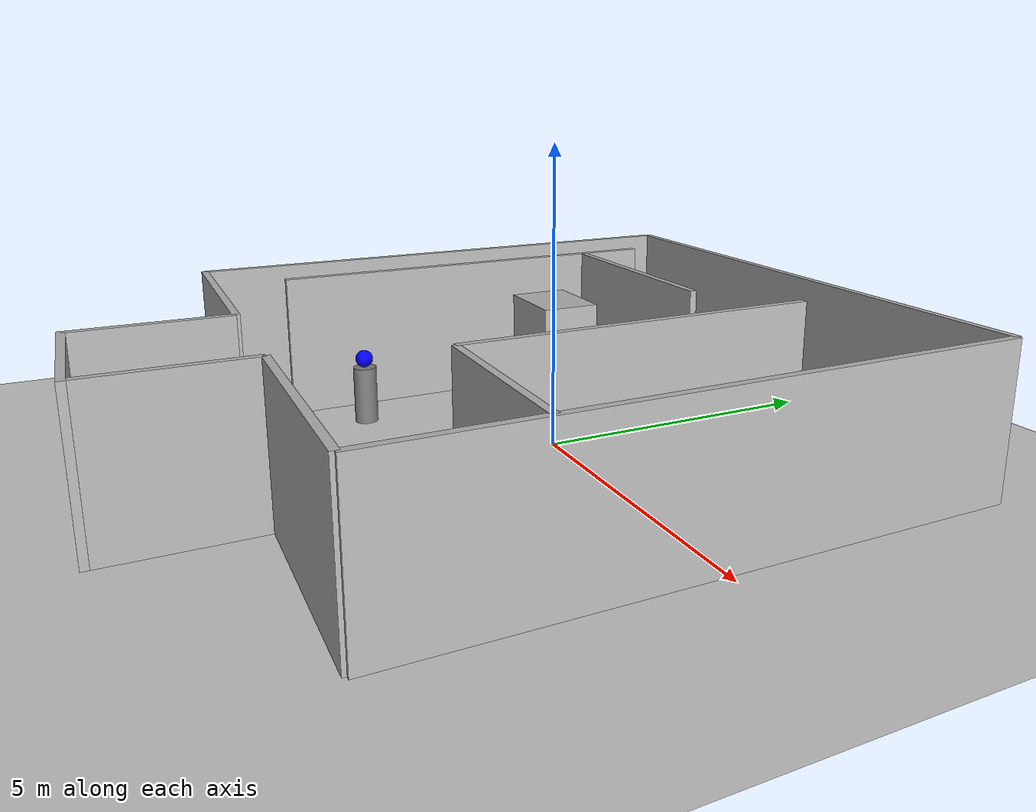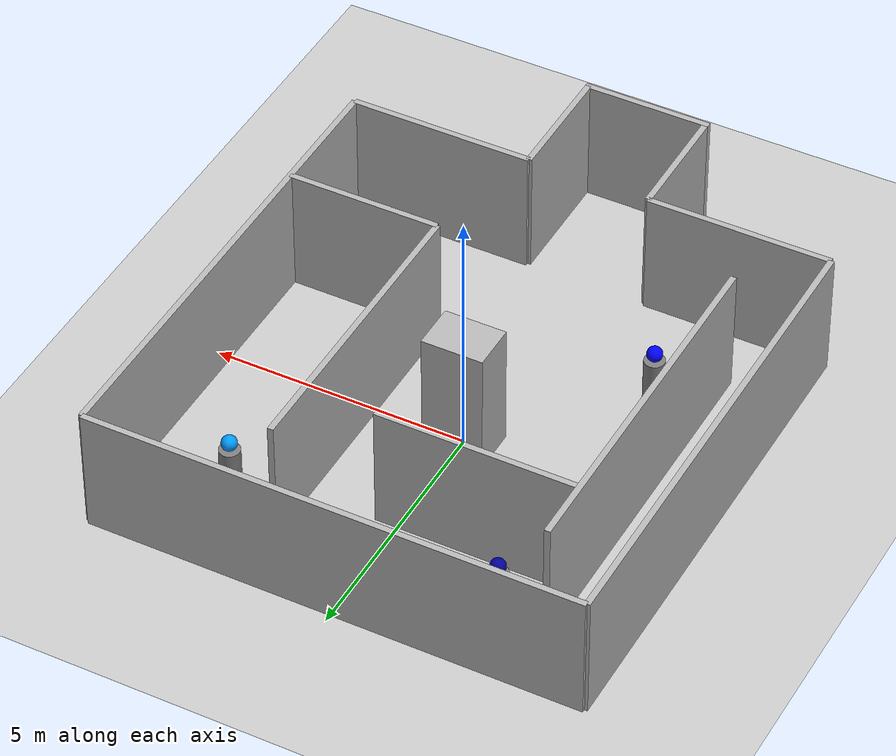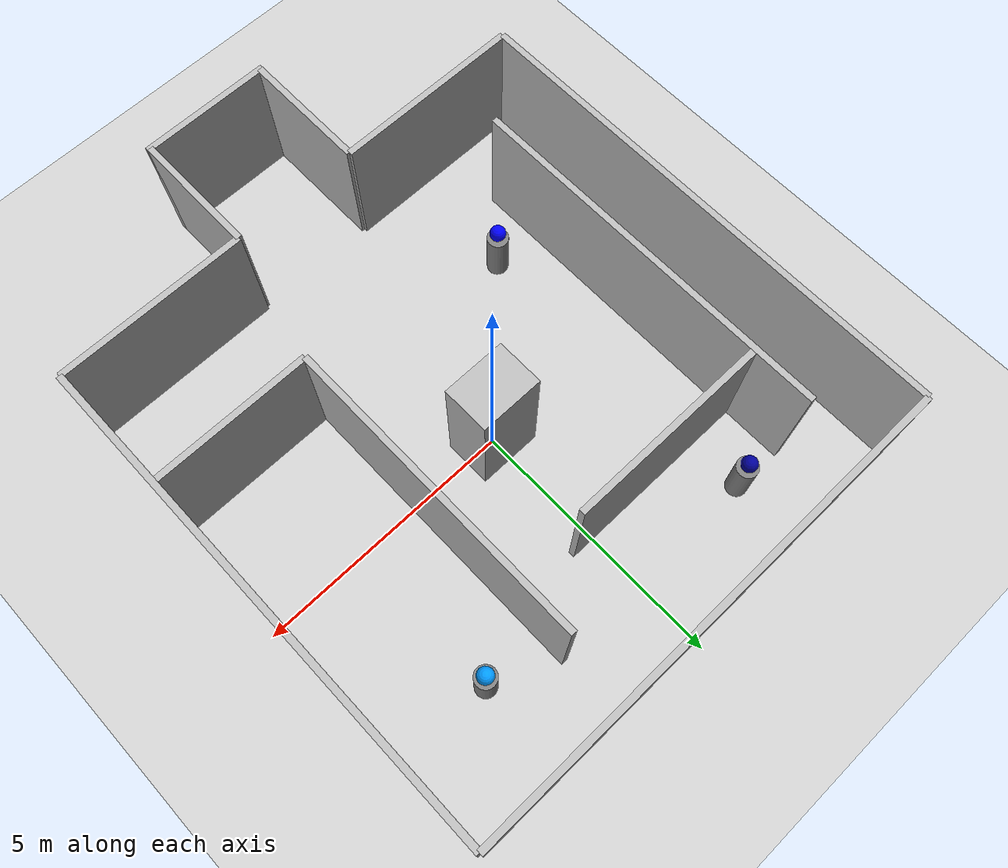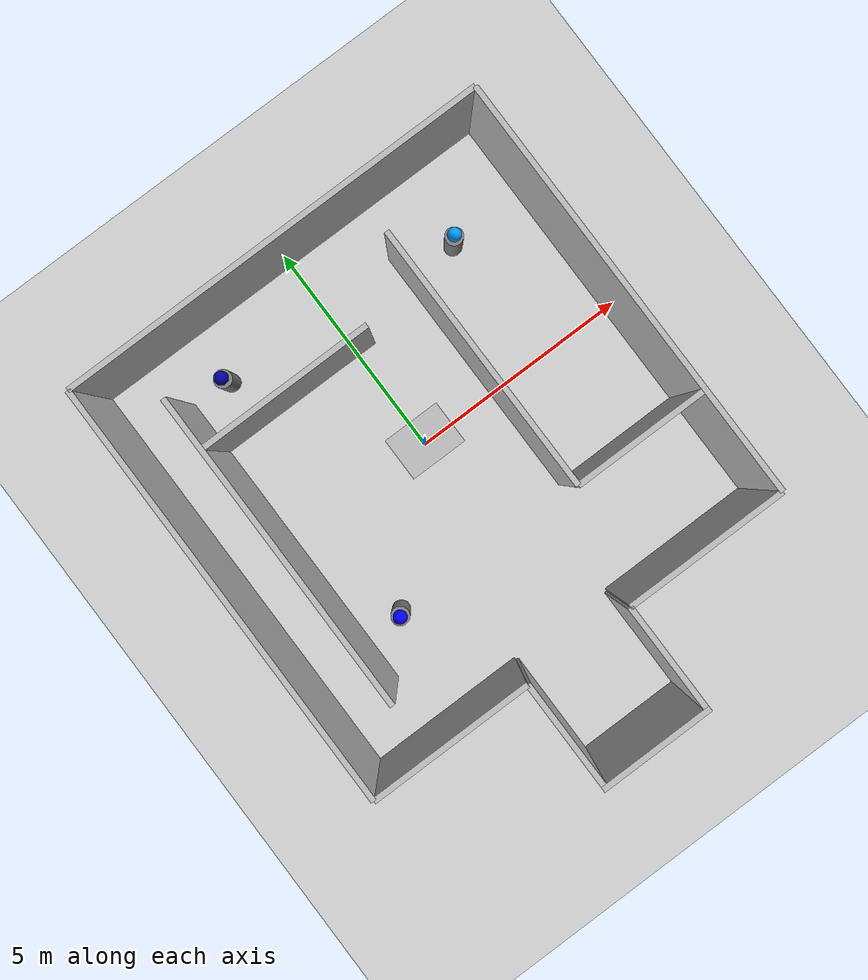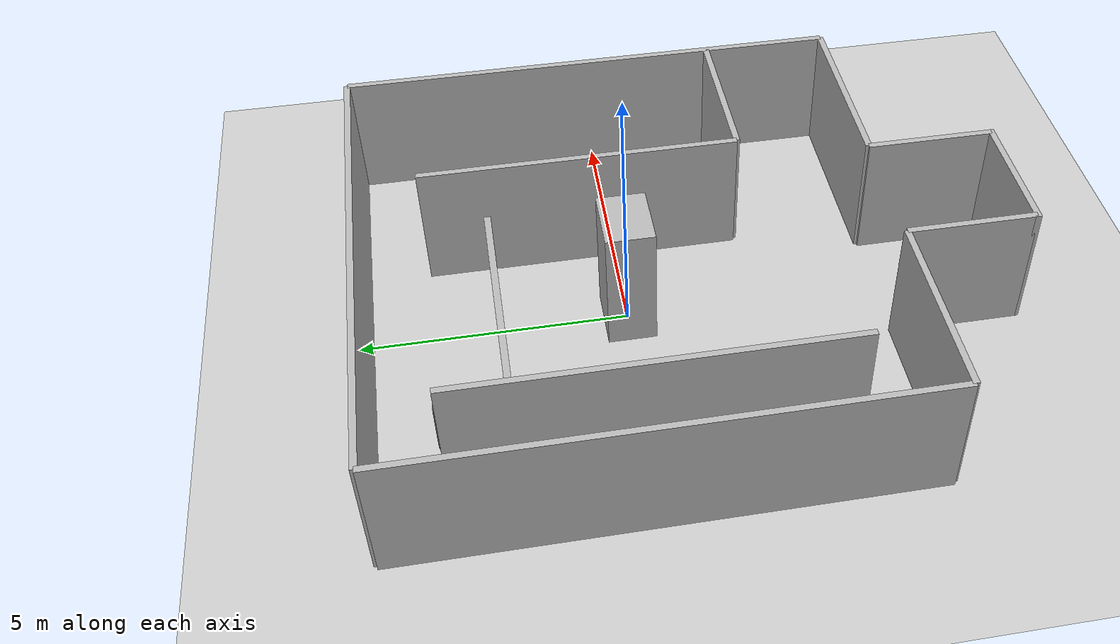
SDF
<?xml version="1.0" ?>
<sdf version="1.8">
  <world name="warehouse_scaled">
    <physics name="1ms" type="ignored">
      <max_step_size>0.001</max_step_size>
      <real_time_factor>1.0</real_time_factor>
    </physics>
    <light name="sun" type="directional">
      <cast_shadows>true</cast_shadows>
      <pose>0 0 10 0 0 0</pose>
      <diffuse>0.8 0.8 0.8 1</diffuse>
      <specular>0.2 0.2 0.2 1</specular>
      <attenuation>
        <range>1000</range>
        <constant>0.9</constant>
        <linear>0.01</linear>
        <quadratic>0.001</quadratic>
      </attenuation>
      <direction>-0.5 0.1 -0.9</direction>
    </light>
    <model name="ground_plane">
      <static>true</static>
      <link name="link">
        <collision name="collision">
          <geometry><plane><normal>0 0 1</normal><size>60.0 60.0</size></plane></geometry>
        </collision>
        <visual name="visual">
          <geometry><plane><normal>0 0 1</normal><size>60.0 60.0</size></plane></geometry>
          <material><ambient>0.8 0.8 0.8 1</ambient><diffuse>0.8 0.8 0.8 1</diffuse></material>
        </visual>
      </link>
    </model>

    <model name="warehouse_structure">
      <static>true</static>
      <link name="north_wall">
        <pose>0 4.8 1.25 0 0 0</pose>
        <collision name="col"><geometry><box><size>9.6 0.12 2.5</size></box></geometry></collision>
        <visual name="vis"><geometry><box><size>9.6 0.12 2.5</size></box></geometry></visual>
      </link>
      <link name="west_wall">
        <pose>-4.8 0 1.25 0 0 1.57079632679</pose>
        <collision name="col"><geometry><box><size>9.6 0.12 2.5</size></box></geometry></collision>
        <visual name="vis"><geometry><box><size>9.6 0.12 2.5</size></box></geometry></visual>
      </link>
      <link name="east_wall">
        <pose>4.8 0 1.25 0 0 1.57079632679</pose>
        <collision name="col"><geometry><box><size>9.6 0.12 2.5</size></box></geometry></collision>
        <visual name="vis"><geometry><box><size>9.6 0.12 2.5</size></box></geometry></visual>
      </link>
      <link name="south_wall_left">
        <pose>-3.0 -4.8 1.25 0 0 0</pose>
        <collision name="col"><geometry><box><size>3.5999999999999996 0.12 2.5</size></box></geometry></collision>
        <visual name="vis"><geometry><box><size>3.5999999999999996 0.12 2.5</size></box></geometry></visual>
      </link>
      <link name="south_wall_right">
        <pose>3.0 -4.8 1.25 0 0 0</pose>
        <collision name="col"><geometry><box><size>3.5999999999999996 0.12 2.5</size></box></geometry></collision>
        <visual name="vis"><geometry><box><size>3.5999999999999996 0.12 2.5</size></box></geometry></visual>
      </link>
      <link name="dock_left_wall">
        <pose>-1.2 -6.0 1.25 0 0 1.57079632679</pose>
        <collision name="col"><geometry><box><size>2.4 0.12 2.5</size></box></geometry></collision>
        <visual name="vis"><geometry><box><size>2.4 0.12 2.5</size></box></geometry></visual>
      </link>
      <link name="dock_right_wall">
        <pose>1.2 -6.0 1.25 0 0 1.57079632679</pose>
        <collision name="col"><geometry><box><size>2.4 0.12 2.5</size></box></geometry></collision>
        <visual name="vis"><geometry><box><size>2.4 0.12 2.5</size></box></geometry></visual>
      </link>
      <link name="dock_back_wall">
        <pose>0 -7.199999999999999 1.25 0 0 0</pose>
        <collision name="col"><geometry><box><size>2.52 0.12 2.5</size></box></geometry></collision>
        <visual name="vis"><geometry><box><size>2.52 0.12 2.5</size></box></geometry></visual>
      </link>
      <link name="narrow_corridor_wall">
        <pose>-3.46 0 1.25 0 0 1.57079632679</pose>
        <collision name="col"><geometry><box><size>7.2 0.12 2.5</size></box></geometry></collision>
        <visual name="vis"><geometry><box><size>7.2 0.12 2.5</size></box></geometry></visual>
      </link>
      <link name="inner_left_horizontal">
        <pose>-1.48 2.4 1.25 0 0 0</pose>
        <collision name="col"><geometry><box><size>3.84 0.12 2.5</size></box></geometry></collision>
        <visual name="vis"><geometry><box><size>3.84 0.12 2.5</size></box></geometry></visual>
      </link>
      <link name="inner_right_vertical">
        <pose>1.7999999999999998 0.6 1.25 0 0 1.57079632679</pose>
        <collision name="col"><geometry><box><size>6.0 0.12 2.5</size></box></geometry></collision>
        <visual name="vis"><geometry><box><size>6.0 0.12 2.5</size></box></geometry></visual>
      </link>
      <link name="inner_right_horizontal">
        <pose>3.3 -2.4 1.25 0 0 0</pose>
        <collision name="col"><geometry><box><size>3.0 0.12 2.5</size></box></geometry></collision>
        <visual name="vis"><geometry><box><size>3.0 0.12 2.5</size></box></geometry></visual>
      </link>
      <link name="center_island">
        <pose>0 0 1.25 0 0 0</pose>
        <collision name="col"><geometry><box><size>1.2 0.8999999999999999 2.5</size></box></geometry></collision>
        <visual name="vis"><geometry><box><size>1.2 0.8999999999999999 2.5</size></box></geometry></visual>
      </link>
    </model>

    <model name="target_pillar_1">
      <static>true</static>
      <pose>-2.5 -2.5 0 0 0 0</pose>
      <link name="pillar">
        <pose>0 0 0.5 0 0 0</pose>
        <collision name="col"><geometry><cylinder><radius>0.2</radius><length>1.0</length></cylinder></geometry></collision>
        <visual name="vis">
          <geometry><cylinder><radius>0.2</radius><length>1.0</length></cylinder></geometry>
          <material><ambient>0.5 0.5 0.5 1</ambient><diffuse>0.5 0.5 0.5 1</diffuse></material>
        </visual>
      </link>
    </model>

    <model name="target_sphere_1">
      <static>false</static>
      <pose>-2.5 -2.5 1.15 0 0 0</pose>
      <link name="sphere_link">
        <inertial>
          <mass>0.5</mass>
          <inertia>
            <ixx>0.0045</ixx><iyy>0.0045</iyy><izz>0.0045</izz>
            <ixy>0</ixy><ixz>0</ixz><iyz>0</iyz>
          </inertia>
        </inertial>
        <collision name="col"><geometry><sphere><radius>0.15</radius></sphere></geometry></collision>
        <visual name="vis">
          <geometry><sphere><radius>0.15</radius></sphere></geometry>
          <material>
            <ambient>0.0 0.0 1.0 1.0</ambient> <diffuse>0.0 0.0 1.0 1.0</diffuse>
          </material>
        </visual>
      </link>
    </model>

    <model name="target_pillar_2">
      <static>true</static>
      <pose>3.0 3.0 0 0 0 0</pose>
      <link name="pillar">
        <pose>0 0 0.5 0 0 0</pose>
        <collision name="col"><geometry><cylinder><radius>0.2</radius><length>1.0</length></cylinder></geometry></collision>
        <visual name="vis">
          <geometry><cylinder><radius>0.2</radius><length>1.0</length></cylinder></geometry>
          <material><ambient>0.5 0.5 0.5 1</ambient><diffuse>0.5 0.5 0.5 1</diffuse></material>
        </visual>
      </link>
    </model>

    <model name="target_sphere_2">
      <static>false</static>
      <pose>3.0 3.0 1.15 0 0 0</pose>
      <link name="sphere_link">
        <inertial>
          <mass>0.5</mass>
          <inertia>
            <ixx>0.0045</ixx><iyy>0.0045</iyy><izz>0.0045</izz>
            <ixy>0</ixy><ixz>0</ixz><iyz>0</iyz>
          </inertia>
        </inertial>
        <collision name="col"><geometry><sphere><radius>0.15</radius></sphere></geometry></collision>
        <visual name="vis">
          <geometry><sphere><radius>0.15</radius></sphere></geometry>
          <material>
            <ambient>0.0 0.6 1.0 1.0</ambient> <diffuse>0.0 0.6 1.0 1.0</diffuse>
          </material>
        </visual>
      </link>
    </model>

    <model name="target_pillar_3">
      <static>true</static>
      <pose>-2.5 3.5 0 0 0 0</pose>
      <link name="pillar">
        <pose>0 0 0.5 0 0 0</pose>
        <collision name="col"><geometry><cylinder><radius>0.2</radius><length>1.0</length></cylinder></geometry></collision>
        <visual name="vis">
          <geometry><cylinder><radius>0.2</radius><length>1.0</length></cylinder></geometry>
          <material><ambient>0.5 0.5 0.5 1</ambient><diffuse>0.5 0.5 0.5 1</diffuse></material>
        </visual>
      </link>
    </model>

    <model name="target_sphere_3">
      <static>false</static>
      <pose>-2.5 3.5 1.15 0 0 0</pose>
      <link name="sphere_link">
        <inertial>
          <mass>0.5</mass>
          <inertia>
            <ixx>0.0045</ixx><iyy>0.0045</iyy><izz>0.0045</izz>
            <ixy>0</ixy><ixz>0</ixz><iyz>0</iyz>
          </inertia>
        </inertial>
        <collision name="col"><geometry><sphere><radius>0.15</radius></sphere></geometry></collision>
        <visual name="vis">
          <geometry><sphere><radius>0.15</radius></sphere></geometry>
          <material>
            <ambient>0.0 0.0 0.6 1.0</ambient> <diffuse>0.0 0.0 0.6 1.0</diffuse>
          </material>
        </visual>
      </link>
    </model>

  </world>
</sdf>
